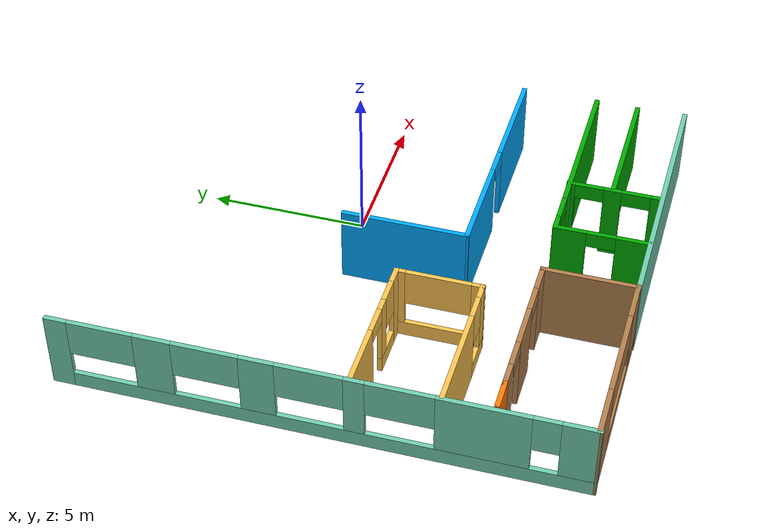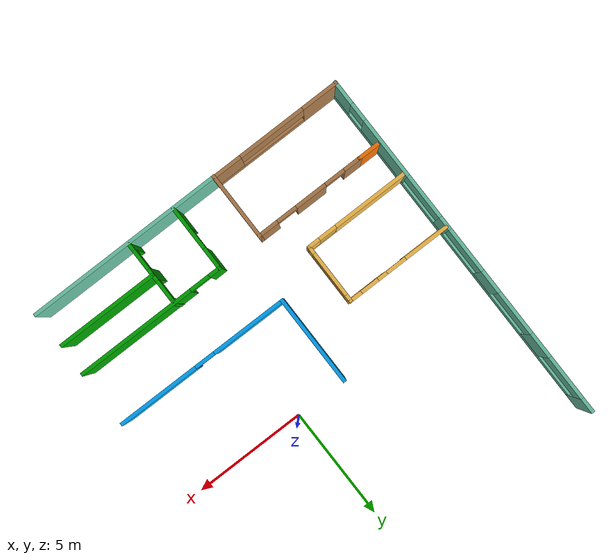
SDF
<sdf version="1.6">
 <model name="Building-1">
  <pose>-1.79482 -0.843369 0 0 -0 0</pose>
  <link name="Wall_101">
   <collision name="Wall_101_Collision">
    <geometry><box><size>1 0.15 2.5</size></box></geometry>
    <pose>0 0 1.25 0 -0 0</pose>
   </collision>
   <visual name="Wall_101_Visual">
    <pose>0 0 1.25 0 -0 0</pose>
    <geometry><box><size>1 0.15 2.5</size></box></geometry>
    <material>
     <script><uri>file://media/materials/scripts/gazebo.material</uri><name>Gazebo/Grey</name></script>
     <ambient>0.996078 0.47451 0.0196078 1</ambient>
    </material>
    <meta><layer>0</layer></meta>
   </visual>
   <pose>-6.64557 -5.66391 0 0 -0 0</pose>
  </link>
  <link name="Wall_55">
   <pose>-3.79556 -5.66391 0 0 -0 0</pose>
   <visual name="Wall_55_Visual_0">
    <pose>-2.08336 0 1.25 0 -0 0</pose>
    <geometry><box><size>0.833273 0.15 2.5</size></box></geometry>
    <material>
     <script><uri>file://media/materials/scripts/gazebo.material</uri><name>Gazebo/Wood</name></script>
     <ambient>0.996078 0.47451 0.0196078 1</ambient>
    </material>
    <meta><layer>0</layer></meta>
   </visual>
   <collision name="Wall_55_Collision_0">
    <geometry><box><size>0.833273 0.15 2.5</size></box></geometry>
    <pose>-2.08336 0 1.25 0 -0 0</pose>
   </collision>
   <visual name="Wall_55_Visual_1">
    <pose>-0.059292 0 1.25 0 -0 0</pose>
    <geometry><box><size>1.41487 0.15 2.5</size></box></geometry>
    <material>
     <script><uri>file://media/materials/scripts/gazebo.material</uri><name>Gazebo/Wood</name></script>
     <ambient>0.996078 0.47451 0.0196078 1</ambient>
    </material>
    <meta><layer>0</layer></meta>
   </visual>
   <collision name="Wall_55_Collision_1">
    <geometry><box><size>1.41487 0.15 2.5</size></box></geometry>
    <pose>-0.059292 0 1.25 0 -0 0</pose>
   </collision>
   <visual name="Wall_55_Visual_2">
    <pose>2.02407 0 1.25 0 -0 0</pose>
    <geometry><box><size>0.951857 0.15 2.5</size></box></geometry>
    <material>
     <script><uri>file://media/materials/scripts/gazebo.material</uri><name>Gazebo/Wood</name></script>
     <ambient>0.996078 0.47451 0.0196078 1</ambient>
    </material>
    <meta><layer>0</layer></meta>
   </visual>
   <collision name="Wall_55_Collision_2">
    <geometry><box><size>0.951857 0.15 2.5</size></box></geometry>
    <pose>2.02407 0 1.25 0 -0 0</pose>
   </collision>
   <visual name="Wall_55_Visual_3">
    <pose>-1.21673 0 2.25 0 -0 0</pose>
    <geometry><box><size>0.9 0.15 0.5</size></box></geometry>
    <material>
     <script><uri>file://media/materials/scripts/gazebo.material</uri><name>Gazebo/Wood</name></script>
     <ambient>0.996078 0.47451 0.0196078 1</ambient>
    </material>
    <meta><layer>0</layer></meta>
   </visual>
   <collision name="Wall_55_Collision_3">
    <geometry><box><size>0.9 0.15 0.5</size></box></geometry>
    <pose>-1.21673 0 2.25 0 -0 0</pose>
   </collision>
   <visual name="Wall_55_Visual_4">
    <pose>1.09814 0 2.25 0 -0 0</pose>
    <geometry><box><size>0.9 0.15 0.5</size></box></geometry>
    <material>
     <script><uri>file://media/materials/scripts/gazebo.material</uri><name>Gazebo/Wood</name></script>
     <ambient>0.996078 0.47451 0.0196078 1</ambient>
    </material>
    <meta><layer>0</layer></meta>
   </visual>
   <collision name="Wall_55_Collision_4">
    <geometry><box><size>0.9 0.15 0.5</size></box></geometry>
    <pose>1.09814 0 2.25 0 -0 0</pose>
   </collision>
  </link>
  <link name="Wall_56">
   <collision name="Wall_56_Collision">
    <geometry><box><size>3 0.15 2.5</size></box></geometry>
    <pose>0 0 1.25 0 -0 0</pose>
   </collision>
   <visual name="Wall_56_Visual">
    <pose>0 0 1.25 0 -0 0</pose>
    <geometry><box><size>3 0.15 2.5</size></box></geometry>
    <material>
     <script><uri>file://media/materials/scripts/gazebo.material</uri><name>Gazebo/Wood</name></script>
     <ambient>0.996078 0.47451 0.0196078 1</ambient>
    </material>
    <meta><layer>0</layer></meta>
   </visual>
   <pose>-1.37057 -7.08891 0 0 0 -1.5708</pose>
  </link>
  <link name="Wall_57">
   <collision name="Wall_57_Collision">
    <geometry><box><size>8.75 0.15 2.5</size></box></geometry>
    <pose>0 0 1.25 0 -0 0</pose>
   </collision>
   <visual name="Wall_57_Visual">
    <pose>0 0 1.25 0 -0 0</pose>
    <geometry><box><size>8.75 0.15 2.5</size></box></geometry>
    <material>
     <script><uri>file://media/materials/scripts/gazebo.material</uri><name>Gazebo/Grey</name></script>
     <ambient>0.435294 0.796078 0.67451 1</ambient>
    </material>
    <meta><layer>0</layer></meta>
   </visual>
   <pose>2.92943 -8.51391 0 0 -0 0</pose>
  </link>
  <link name="Wall_66">
   <pose>-7.28687 -0.542232 0 0 0 -1.56606</pose>
   <visual name="Wall_66_Visual_0">
    <pose>-7.70025 0 1.25 0 -0 0</pose>
    <geometry><box><size>0.692866 0.15 2.5</size></box></geometry>
    <material>
     <script><uri>file://media/materials/scripts/gazebo.material</uri><name>Gazebo/Grey</name></script>
     <ambient>0.435294 0.796078 0.67451 1</ambient>
    </material>
    <meta><layer>0</layer></meta>
   </visual>
   <collision name="Wall_66_Collision_0">
    <geometry><box><size>0.692866 0.15 2.5</size></box></geometry>
    <pose>-7.70025 0 1.25 0 -0 0</pose>
   </collision>
   <visual name="Wall_66_Visual_1">
    <pose>0.346433 0 0.25 0 -0 0</pose>
    <geometry><box><size>15.4005 0.15 0.5</size></box></geometry>
    <material>
     <script><uri>file://media/materials/scripts/gazebo.material</uri><name>Gazebo/Grey</name></script>
     <ambient>0.435294 0.796078 0.67451 1</ambient>
    </material>
    <meta><layer>0</layer></meta>
   </visual>
   <collision name="Wall_66_Collision_1">
    <geometry><box><size>15.4005 0.15 0.5</size></box></geometry>
    <pose>0.346433 0 0.25 0 -0 0</pose>
   </collision>
   <visual name="Wall_66_Visual_2">
    <pose>-4.78225 0 1.5 0 -0 0</pose>
    <geometry><box><size>1.14314 0.15 2</size></box></geometry>
    <material>
     <script><uri>file://media/materials/scripts/gazebo.material</uri><name>Gazebo/Grey</name></script>
     <ambient>0.435294 0.796078 0.67451 1</ambient>
    </material>
    <meta><layer>0</layer></meta>
   </visual>
   <collision name="Wall_66_Collision_2">
    <geometry><box><size>1.14314 0.15 2</size></box></geometry>
    <pose>-4.78225 0 1.5 0 -0 0</pose>
   </collision>
   <visual name="Wall_66_Visual_3">
    <pose>-1.6864 0 1.5 0 -0 0</pose>
    <geometry><box><size>1.04855 0.15 2</size></box></geometry>
    <material>
     <script><uri>file://media/materials/scripts/gazebo.material</uri><name>Gazebo/Grey</name></script>
     <ambient>0.435294 0.796078 0.67451 1</ambient>
    </material>
    <meta><layer>0</layer></meta>
   </visual>
   <collision name="Wall_66_Collision_3">
    <geometry><box><size>1.04855 0.15 2</size></box></geometry>
    <pose>-1.6864 0 1.5 0 -0 0</pose>
   </collision>
   <visual name="Wall_66_Visual_4">
    <pose>1.14316 0 1.5 0 -0 0</pose>
    <geometry><box><size>0.610584 0.15 2</size></box></geometry>
    <material>
     <script><uri>file://media/materials/scripts/gazebo.material</uri><name>Gazebo/Grey</name></script>
     <ambient>0.435294 0.796078 0.67451 1</ambient>
    </material>
    <meta><layer>0</layer></meta>
   </visual>
   <collision name="Wall_66_Collision_4">
    <geometry><box><size>0.610584 0.15 2</size></box></geometry>
    <pose>1.14316 0 1.5 0 -0 0</pose>
   </collision>
   <visual name="Wall_66_Visual_5">
    <pose>4.7972 0 1.5 0 -0 0</pose>
    <geometry><box><size>2.6975 0.15 2</size></box></geometry>
    <material>
     <script><uri>file://media/materials/scripts/gazebo.material</uri><name>Gazebo/Grey</name></script>
     <ambient>0.435294 0.796078 0.67451 1</ambient>
    </material>
    <meta><layer>0</layer></meta>
   </visual>
   <collision name="Wall_66_Collision_5">
    <geometry><box><size>2.6975 0.15 2</size></box></geometry>
    <pose>4.7972 0 1.5 0 -0 0</pose>
   </collision>
   <visual name="Wall_66_Visual_6">
    <pose>7.49632 0 1.5 0 -0 0</pose>
    <geometry><box><size>1.10073 0.15 2</size></box></geometry>
    <material>
     <script><uri>file://media/materials/scripts/gazebo.material</uri><name>Gazebo/Grey</name></script>
     <ambient>0.435294 0.796078 0.67451 1</ambient>
    </material>
    <meta><layer>0</layer></meta>
   </visual>
   <collision name="Wall_66_Collision_6">
    <geometry><box><size>1.10073 0.15 2</size></box></geometry>
    <pose>7.49632 0 1.5 0 -0 0</pose>
   </collision>
   <visual name="Wall_66_Visual_7">
    <pose>-6.35382 0 1.9 0 -0 0</pose>
    <geometry><box><size>2 0.15 1.2</size></box></geometry>
    <material>
     <script><uri>file://media/materials/scripts/gazebo.material</uri><name>Gazebo/Grey</name></script>
     <ambient>0.435294 0.796078 0.67451 1</ambient>
    </material>
    <meta><layer>0</layer></meta>
   </visual>
   <collision name="Wall_66_Collision_7">
    <geometry><box><size>2 0.15 1.2</size></box></geometry>
    <pose>-6.35382 0 1.9 0 -0 0</pose>
   </collision>
   <visual name="Wall_66_Visual_8">
    <pose>-3.21068 0 1.9 0 -0 0</pose>
    <geometry><box><size>2 0.15 1.2</size></box></geometry>
    <material>
     <script><uri>file://media/materials/scripts/gazebo.material</uri><name>Gazebo/Grey</name></script>
     <ambient>0.435294 0.796078 0.67451 1</ambient>
    </material>
    <meta><layer>0</layer></meta>
   </visual>
   <collision name="Wall_66_Collision_8">
    <geometry><box><size>2 0.15 1.2</size></box></geometry>
    <pose>-3.21068 0 1.9 0 -0 0</pose>
   </collision>
   <visual name="Wall_66_Visual_9">
    <pose>-0.162128 0 1.9 0 -0 0</pose>
    <geometry><box><size>2 0.15 1.2</size></box></geometry>
    <material>
     <script><uri>file://media/materials/scripts/gazebo.material</uri><name>Gazebo/Grey</name></script>
     <ambient>0.435294 0.796078 0.67451 1</ambient>
    </material>
    <meta><layer>0</layer></meta>
   </visual>
   <collision name="Wall_66_Collision_9">
    <geometry><box><size>2 0.15 1.2</size></box></geometry>
    <pose>-0.162128 0 1.9 0 -0 0</pose>
   </collision>
   <visual name="Wall_66_Visual_10">
    <pose>2.44846 0 1.9 0 -0 0</pose>
    <geometry><box><size>2 0.15 1.2</size></box></geometry>
    <material>
     <script><uri>file://media/materials/scripts/gazebo.material</uri><name>Gazebo/Grey</name></script>
     <ambient>0.435294 0.796078 0.67451 1</ambient>
    </material>
    <meta><layer>0</layer></meta>
   </visual>
   <collision name="Wall_66_Collision_10">
    <geometry><box><size>2 0.15 1.2</size></box></geometry>
    <pose>2.44846 0 1.9 0 -0 0</pose>
   </collision>
   <visual name="Wall_66_Visual_11">
    <pose>6.54595 0 1.9 0 -0 0</pose>
    <geometry><box><size>0.8 0.15 1.2</size></box></geometry>
    <material>
     <script><uri>file://media/materials/scripts/gazebo.material</uri><name>Gazebo/Grey</name></script>
     <ambient>0.435294 0.796078 0.67451 1</ambient>
    </material>
    <meta><layer>0</layer></meta>
   </visual>
   <collision name="Wall_66_Collision_11">
    <geometry><box><size>0.8 0.15 1.2</size></box></geometry>
    <pose>6.54595 0 1.9 0 -0 0</pose>
   </collision>
  </link>
  <link name="Wall_67">
   <pose>-4.30246 -8.49175 0 0 -0 0</pose>
   <visual name="Wall_67_Visual_0">
    <pose>-2.17925 0 1.25 0 -0 0</pose>
    <geometry><box><size>1.68488 0.15 2.5</size></box></geometry>
    <material>
     <script><uri>file://media/materials/scripts/gazebo.material</uri><name>Gazebo/Wood</name></script>
     <ambient>0.435294 0.796078 0.67451 1</ambient>
    </material>
    <meta><layer>0</layer></meta>
   </visual>
   <collision name="Wall_67_Collision_0">
    <geometry><box><size>1.68488 0.15 2.5</size></box></geometry>
    <pose>-2.17925 0 1.25 0 -0 0</pose>
   </collision>
   <visual name="Wall_67_Visual_1">
    <pose>0.842439 0 0.25 0 -0 0</pose>
    <geometry><box><size>4.3585 0.15 0.5</size></box></geometry>
    <material>
     <script><uri>file://media/materials/scripts/gazebo.material</uri><name>Gazebo/Wood</name></script>
     <ambient>0.435294 0.796078 0.67451 1</ambient>
    </material>
    <meta><layer>0</layer></meta>
   </visual>
   <collision name="Wall_67_Collision_1">
    <geometry><box><size>4.3585 0.15 0.5</size></box></geometry>
    <pose>0.842439 0 0.25 0 -0 0</pose>
   </collision>
   <visual name="Wall_67_Visual_2">
    <pose>2.34244 0 1.5 0 -0 0</pose>
    <geometry><box><size>1.3585 0.15 2</size></box></geometry>
    <material>
     <script><uri>file://media/materials/scripts/gazebo.material</uri><name>Gazebo/Wood</name></script>
     <ambient>0.435294 0.796078 0.67451 1</ambient>
    </material>
    <meta><layer>0</layer></meta>
   </visual>
   <collision name="Wall_67_Collision_2">
    <geometry><box><size>1.3585 0.15 2</size></box></geometry>
    <pose>2.34244 0 1.5 0 -0 0</pose>
   </collision>
   <visual name="Wall_67_Visual_3">
    <pose>0.163188 0 1.9 0 -0 0</pose>
    <geometry><box><size>3 0.15 1.2</size></box></geometry>
    <material>
     <script><uri>file://media/materials/scripts/gazebo.material</uri><name>Gazebo/Wood</name></script>
     <ambient>0.435294 0.796078 0.67451 1</ambient>
    </material>
    <meta><layer>0</layer></meta>
   </visual>
   <collision name="Wall_67_Collision_3">
    <geometry><box><size>3 0.15 1.2</size></box></geometry>
    <pose>0.163188 0 1.9 0 -0 0</pose>
   </collision>
  </link>
  <link name="Wall_71">
   <pose>-4.91996 -4.15514 0 0 0 -6.7e-05</pose>
   <visual name="Wall_71_Visual_0">
    <pose>-0.681713 0 1.25 0 -0 0</pose>
    <geometry><box><size>3.41204 0.15 2.5</size></box></geometry>
    <material>
     <script><uri>file://media/materials/scripts/gazebo.material</uri><name>Gazebo/Grey</name></script>
     <ambient>1 0.764706 0.305882 1</ambient>
    </material>
    <meta><layer>0</layer></meta>
   </visual>
   <collision name="Wall_71_Collision_0">
    <geometry><box><size>3.41204 0.15 2.5</size></box></geometry>
    <pose>-0.681713 0 1.25 0 -0 0</pose>
   </collision>
   <visual name="Wall_71_Visual_1">
    <pose>1.70602 0 0.25 0 -0 0</pose>
    <geometry><box><size>1.36343 0.15 0.5</size></box></geometry>
    <material>
     <script><uri>file://media/materials/scripts/gazebo.material</uri><name>Gazebo/Grey</name></script>
     <ambient>1 0.764706 0.305882 1</ambient>
    </material>
    <meta><layer>0</layer></meta>
   </visual>
   <collision name="Wall_71_Collision_1">
    <geometry><box><size>1.36343 0.15 0.5</size></box></geometry>
    <pose>1.70602 0 0.25 0 -0 0</pose>
   </collision>
   <visual name="Wall_71_Visual_2">
    <pose>2.10602 0 1.5 0 -0 0</pose>
    <geometry><box><size>0.563425 0.15 2</size></box></geometry>
    <material>
     <script><uri>file://media/materials/scripts/gazebo.material</uri><name>Gazebo/Grey</name></script>
     <ambient>1 0.764706 0.305882 1</ambient>
    </material>
    <meta><layer>0</layer></meta>
   </visual>
   <collision name="Wall_71_Collision_2">
    <geometry><box><size>0.563425 0.15 2</size></box></geometry>
    <pose>2.10602 0 1.5 0 -0 0</pose>
   </collision>
   <visual name="Wall_71_Visual_3">
    <pose>1.42431 0 1.9 0 -0 0</pose>
    <geometry><box><size>0.8 0.15 1.2</size></box></geometry>
    <material>
     <script><uri>file://media/materials/scripts/gazebo.material</uri><name>Gazebo/Grey</name></script>
     <ambient>1 0.764706 0.305882 1</ambient>
    </material>
    <meta><layer>0</layer></meta>
   </visual>
   <collision name="Wall_71_Collision_3">
    <geometry><box><size>0.8 0.15 1.2</size></box></geometry>
    <pose>1.42431 0 1.9 0 -0 0</pose>
   </collision>
  </link>
  <link name="Wall_72">
   <pose>-2.60723 -2.8553 0 0 -0 1.5708</pose>
   <visual name="Wall_72_Visual_0">
    <pose>-1.17814 0 1.25 0 -0 0</pose>
    <geometry><box><size>0.393718 0.15 2.5</size></box></geometry>
    <material>
     <script><uri>file://media/materials/scripts/gazebo.material</uri><name>Gazebo/Grey</name></script>
     <ambient>1 0.764706 0.305882 1</ambient>
    </material>
    <meta><layer>0</layer></meta>
   </visual>
   <collision name="Wall_72_Collision_0">
    <geometry><box><size>0.393718 0.15 2.5</size></box></geometry>
    <pose>-1.17814 0 1.25 0 -0 0</pose>
   </collision>
   <visual name="Wall_72_Visual_1">
    <pose>0.196859 0 0.25 0 -0 0</pose>
    <geometry><box><size>2.35628 0.15 0.5</size></box></geometry>
    <material>
     <script><uri>file://media/materials/scripts/gazebo.material</uri><name>Gazebo/Grey</name></script>
     <ambient>1 0.764706 0.305882 1</ambient>
    </material>
    <meta><layer>0</layer></meta>
   </visual>
   <collision name="Wall_72_Collision_1">
    <geometry><box><size>2.35628 0.15 0.5</size></box></geometry>
    <pose>0.196859 0 0.25 0 -0 0</pose>
   </collision>
   <visual name="Wall_72_Visual_2">
    <pose>1.19686 0 1.5 0 -0 0</pose>
    <geometry><box><size>0.356282 0.15 2</size></box></geometry>
    <material>
     <script><uri>file://media/materials/scripts/gazebo.material</uri><name>Gazebo/Grey</name></script>
     <ambient>1 0.764706 0.305882 1</ambient>
    </material>
    <meta><layer>0</layer></meta>
   </visual>
   <collision name="Wall_72_Collision_2">
    <geometry><box><size>0.356282 0.15 2</size></box></geometry>
    <pose>1.19686 0 1.5 0 -0 0</pose>
   </collision>
   <visual name="Wall_72_Visual_3">
    <pose>0.018718 0 1.9 0 -0 0</pose>
    <geometry><box><size>2 0.15 1.2</size></box></geometry>
    <material>
     <script><uri>file://media/materials/scripts/gazebo.material</uri><name>Gazebo/Grey</name></script>
     <ambient>1 0.764706 0.305882 1</ambient>
    </material>
    <meta><layer>0</layer></meta>
   </visual>
   <collision name="Wall_72_Collision_3">
    <geometry><box><size>2 0.15 1.2</size></box></geometry>
    <pose>0.018718 0 1.9 0 -0 0</pose>
   </collision>
  </link>
  <link name="Wall_73">
   <pose>-4.90723 -1.5553 0 0 -0 3.14159</pose>
   <visual name="Wall_73_Visual_0">
    <pose>-2.07496 0 1.25 0 -0 0</pose>
    <geometry><box><size>0.600078 0.15 2.5</size></box></geometry>
    <material>
     <script><uri>file://media/materials/scripts/gazebo.material</uri><name>Gazebo/Grey</name></script>
     <ambient>1 0.764706 0.305882 1</ambient>
    </material>
    <meta><layer>0</layer></meta>
   </visual>
   <collision name="Wall_73_Collision_0">
    <geometry><box><size>0.600078 0.15 2.5</size></box></geometry>
    <pose>-2.07496 0 1.25 0 -0 0</pose>
   </collision>
   <visual name="Wall_73_Visual_1">
    <pose>1.36329 0 1.25 0 -0 0</pose>
    <geometry><box><size>2.02342 0.15 2.5</size></box></geometry>
    <material>
     <script><uri>file://media/materials/scripts/gazebo.material</uri><name>Gazebo/Grey</name></script>
     <ambient>1 0.764706 0.305882 1</ambient>
    </material>
    <meta><layer>0</layer></meta>
   </visual>
   <collision name="Wall_73_Collision_1">
    <geometry><box><size>2.02342 0.15 2.5</size></box></geometry>
    <pose>1.36329 0 1.25 0 -0 0</pose>
   </collision>
   <visual name="Wall_73_Visual_2">
    <pose>-1.16167 0 0.25 0 -0 0</pose>
    <geometry><box><size>1.2265 0.15 0.5</size></box></geometry>
    <material>
     <script><uri>file://media/materials/scripts/gazebo.material</uri><name>Gazebo/Grey</name></script>
     <ambient>1 0.764706 0.305882 1</ambient>
    </material>
    <meta><layer>0</layer></meta>
   </visual>
   <collision name="Wall_73_Collision_2">
    <geometry><box><size>1.2265 0.15 0.5</size></box></geometry>
    <pose>-1.16167 0 0.25 0 -0 0</pose>
   </collision>
   <visual name="Wall_73_Visual_3">
    <pose>-0.761671 0 1.5 0 -0 0</pose>
    <geometry><box><size>0.426503 0.15 2</size></box></geometry>
    <material>
     <script><uri>file://media/materials/scripts/gazebo.material</uri><name>Gazebo/Grey</name></script>
     <ambient>1 0.764706 0.305882 1</ambient>
    </material>
    <meta><layer>0</layer></meta>
   </visual>
   <collision name="Wall_73_Collision_3">
    <geometry><box><size>0.426503 0.15 2</size></box></geometry>
    <pose>-0.761671 0 1.5 0 -0 0</pose>
   </collision>
   <visual name="Wall_73_Visual_4">
    <pose>-1.37492 0 1.9 0 -0 0</pose>
    <geometry><box><size>0.8 0.15 1.2</size></box></geometry>
    <material>
     <script><uri>file://media/materials/scripts/gazebo.material</uri><name>Gazebo/Grey</name></script>
     <ambient>1 0.764706 0.305882 1</ambient>
    </material>
    <meta><layer>0</layer></meta>
   </visual>
   <collision name="Wall_73_Collision_4">
    <geometry><box><size>0.8 0.15 1.2</size></box></geometry>
    <pose>-1.37492 0 1.9 0 -0 0</pose>
   </collision>
   <visual name="Wall_73_Visual_5">
    <pose>-0.098419 0 2.25 0 -0 0</pose>
    <geometry><box><size>0.9 0.15 0.5</size></box></geometry>
    <material>
     <script><uri>file://media/materials/scripts/gazebo.material</uri><name>Gazebo/Grey</name></script>
     <ambient>1 0.764706 0.305882 1</ambient>
    </material>
    <meta><layer>0</layer></meta>
   </visual>
   <collision name="Wall_73_Collision_5">
    <geometry><box><size>0.9 0.15 0.5</size></box></geometry>
    <pose>-0.098419 0 2.25 0 -0 0</pose>
   </collision>
  </link>
  <link name="Wall_90">
   <collision name="Wall_90_Collision">
    <geometry><box><size>4 0.15 2.5</size></box></geometry>
    <pose>0 0 1.25 0 -0 0</pose>
   </collision>
   <visual name="Wall_90_Visual">
    <pose>0 0 1.25 0 -0 0</pose>
    <geometry><box><size>4 0.15 2.5</size></box></geometry>
    <material>
     <script><uri>file://media/materials/scripts/gazebo.material</uri><name>Gazebo/Grey</name></script>
     <ambient>0 0.666667 1 1</ambient>
    </material>
    <meta><layer>0</layer></meta>
   </visual>
   <pose>-0.536163 -1.23779 0 0 0 -1.5708</pose>
  </link>
  <link name="Wall_91">
   <pose>3.31292 -3.17363 0 0 0 -0.002817</pose>
   <visual name="Wall_91_Visual_0">
    <pose>-2.24472 0 1.25 0 -0 0</pose>
    <geometry><box><size>3.35877 0.15 2.5</size></box></geometry>
    <material>
     <script><uri>file://media/materials/scripts/gazebo.material</uri><name>Gazebo/Grey</name></script>
     <ambient>0 0.666667 1 1</ambient>
    </material>
    <meta><layer>0</layer></meta>
   </visual>
   <collision name="Wall_91_Collision_0">
    <geometry><box><size>3.35877 0.15 2.5</size></box></geometry>
    <pose>-2.24472 0 1.25 0 -0 0</pose>
   </collision>
   <visual name="Wall_91_Visual_1">
    <pose>2.12938 0 1.25 0 -0 0</pose>
    <geometry><box><size>3.58944 0.15 2.5</size></box></geometry>
    <material>
     <script><uri>file://media/materials/scripts/gazebo.material</uri><name>Gazebo/Grey</name></script>
     <ambient>0 0.666667 1 1</ambient>
    </material>
    <meta><layer>0</layer></meta>
   </visual>
   <collision name="Wall_91_Collision_1">
    <geometry><box><size>3.58944 0.15 2.5</size></box></geometry>
    <pose>2.12938 0 1.25 0 -0 0</pose>
   </collision>
   <visual name="Wall_91_Visual_2">
    <pose>-0.115334 0 2.25 0 -0 0</pose>
    <geometry><box><size>0.9 0.15 0.5</size></box></geometry>
    <material>
     <script><uri>file://media/materials/scripts/gazebo.material</uri><name>Gazebo/Grey</name></script>
     <ambient>0 0.666667 1 1</ambient>
    </material>
    <meta><layer>0</layer></meta>
   </visual>
   <collision name="Wall_91_Collision_2">
    <geometry><box><size>0.9 0.15 0.5</size></box></geometry>
    <pose>-0.115334 0 2.25 0 -0 0</pose>
   </collision>
  </link>
  <link name="Wall_93">
   <pose>3.89939 -5.62209 0 0 -0 3.14159</pose>
   <visual name="Wall_93_Visual_0">
    <pose>-0.736455 0 1.25 0 -0 0</pose>
    <geometry><box><size>5.27709 0.15 2.5</size></box></geometry>
    <material>
     <script><uri>file://media/materials/scripts/gazebo.material</uri><name>Gazebo/Grey</name></script>
     <ambient>0 0.666667 0 1</ambient>
    </material>
    <meta><layer>0</layer></meta>
   </visual>
   <collision name="Wall_93_Collision_0">
    <geometry><box><size>5.27709 0.15 2.5</size></box></geometry>
    <pose>-0.736455 0 1.25 0 -0 0</pose>
   </collision>
   <visual name="Wall_93_Visual_1">
    <pose>3.08854 0 1.25 0 -0 0</pose>
    <geometry><box><size>0.572909 0.15 2.5</size></box></geometry>
    <material>
     <script><uri>file://media/materials/scripts/gazebo.material</uri><name>Gazebo/Grey</name></script>
     <ambient>0 0.666667 0 1</ambient>
    </material>
    <meta><layer>0</layer></meta>
   </visual>
   <collision name="Wall_93_Collision_1">
    <geometry><box><size>0.572909 0.15 2.5</size></box></geometry>
    <pose>3.08854 0 1.25 0 -0 0</pose>
   </collision>
   <visual name="Wall_93_Visual_2">
    <pose>2.35209 0 2.25 0 -0 0</pose>
    <geometry><box><size>0.9 0.15 0.5</size></box></geometry>
    <material>
     <script><uri>file://media/materials/scripts/gazebo.material</uri><name>Gazebo/Grey</name></script>
     <ambient>0 0.666667 0 1</ambient>
    </material>
    <meta><layer>0</layer></meta>
   </visual>
   <collision name="Wall_93_Collision_2">
    <geometry><box><size>0.9 0.15 0.5</size></box></geometry>
    <pose>2.35209 0 2.25 0 -0 0</pose>
   </collision>
  </link>
  <link name="Wall_94">
   <pose>0.599385 -7.04709 0 0 0 -1.5708</pose>
   <visual name="Wall_94_Visual_0">
    <pose>-0.985126 0 1.25 0 -0 0</pose>
    <geometry><box><size>1.02975 0.15 2.5</size></box></geometry>
    <material>
     <script><uri>file://media/materials/scripts/gazebo.material</uri><name>Gazebo/Grey</name></script>
     <ambient>0 0.666667 0 1</ambient>
    </material>
    <meta><layer>0</layer></meta>
   </visual>
   <collision name="Wall_94_Collision_0">
    <geometry><box><size>1.02975 0.15 2.5</size></box></geometry>
    <pose>-0.985126 0 1.25 0 -0 0</pose>
   </collision>
   <visual name="Wall_94_Visual_1">
    <pose>0.964874 0 1.25 0 -0 0</pose>
    <geometry><box><size>1.07025 0.15 2.5</size></box></geometry>
    <material>
     <script><uri>file://media/materials/scripts/gazebo.material</uri><name>Gazebo/Grey</name></script>
     <ambient>0 0.666667 0 1</ambient>
    </material>
    <meta><layer>0</layer></meta>
   </visual>
   <collision name="Wall_94_Collision_1">
    <geometry><box><size>1.07025 0.15 2.5</size></box></geometry>
    <pose>0.964874 0 1.25 0 -0 0</pose>
   </collision>
   <visual name="Wall_94_Visual_2">
    <pose>-0.020251 0 2.25 0 -0 0</pose>
    <geometry><box><size>0.9 0.15 0.5</size></box></geometry>
    <material>
     <script><uri>file://media/materials/scripts/gazebo.material</uri><name>Gazebo/Grey</name></script>
     <ambient>0 0.666667 0 1</ambient>
    </material>
    <meta><layer>0</layer></meta>
   </visual>
   <collision name="Wall_94_Collision_2">
    <geometry><box><size>0.9 0.15 0.5</size></box></geometry>
    <pose>-0.020251 0 2.25 0 -0 0</pose>
   </collision>
  </link>
  <link name="Wall_97">
   <pose>2.77957 -7.0275 0 0 0 -1.5708</pose>
   <visual name="Wall_97_Visual_0">
    <pose>-1.36324 0 1.25 0 -0 0</pose>
    <geometry><box><size>0.273518 0.15 2.5</size></box></geometry>
    <material>
     <script><uri>file://media/materials/scripts/gazebo.material</uri><name>Gazebo/Grey</name></script>
     <ambient>0 0.666667 0 1</ambient>
    </material>
    <meta><layer>0</layer></meta>
   </visual>
   <collision name="Wall_97_Collision_0">
    <geometry><box><size>0.273518 0.15 2.5</size></box></geometry>
    <pose>-1.36324 0 1.25 0 -0 0</pose>
   </collision>
   <visual name="Wall_97_Visual_1">
    <pose>-0.051396 0 1.25 0 -0 0</pose>
    <geometry><box><size>0.550171 0.15 2.5</size></box></geometry>
    <material>
     <script><uri>file://media/materials/scripts/gazebo.material</uri><name>Gazebo/Grey</name></script>
     <ambient>0 0.666667 0 1</ambient>
    </material>
    <meta><layer>0</layer></meta>
   </visual>
   <collision name="Wall_97_Collision_1">
    <geometry><box><size>0.550171 0.15 2.5</size></box></geometry>
    <pose>-0.051396 0 1.25 0 -0 0</pose>
   </collision>
   <visual name="Wall_97_Visual_2">
    <pose>1.31184 0 1.25 0 -0 0</pose>
    <geometry><box><size>0.376311 0.15 2.5</size></box></geometry>
    <material>
     <script><uri>file://media/materials/scripts/gazebo.material</uri><name>Gazebo/Grey</name></script>
     <ambient>0 0.666667 0 1</ambient>
    </material>
    <meta><layer>0</layer></meta>
   </visual>
   <collision name="Wall_97_Collision_2">
    <geometry><box><size>0.376311 0.15 2.5</size></box></geometry>
    <pose>1.31184 0 1.25 0 -0 0</pose>
   </collision>
   <visual name="Wall_97_Visual_3">
    <pose>-0.776482 0 2.25 0 -0 0</pose>
    <geometry><box><size>0.9 0.15 0.5</size></box></geometry>
    <material>
     <script><uri>file://media/materials/scripts/gazebo.material</uri><name>Gazebo/Grey</name></script>
     <ambient>0 0.666667 0 1</ambient>
    </material>
    <meta><layer>0</layer></meta>
   </visual>
   <collision name="Wall_97_Collision_3">
    <geometry><box><size>0.9 0.15 0.5</size></box></geometry>
    <pose>-0.776482 0 2.25 0 -0 0</pose>
   </collision>
   <visual name="Wall_97_Visual_4">
    <pose>0.673689 0 2.25 0 -0 0</pose>
    <geometry><box><size>0.9 0.15 0.5</size></box></geometry>
    <material>
     <script><uri>file://media/materials/scripts/gazebo.material</uri><name>Gazebo/Grey</name></script>
     <ambient>0 0.666667 0 1</ambient>
    </material>
    <meta><layer>0</layer></meta>
   </visual>
   <collision name="Wall_97_Collision_4">
    <geometry><box><size>0.9 0.15 0.5</size></box></geometry>
    <pose>0.673689 0 2.25 0 -0 0</pose>
   </collision>
  </link>
  <link name="Wall_99">
   <collision name="Wall_99_Collision">
    <geometry><box><size>4.5 0.15 2.5</size></box></geometry>
    <pose>0 0 1.25 0 -0 0</pose>
   </collision>
   <visual name="Wall_99_Visual">
    <pose>0 0 1.25 0 -0 0</pose>
    <geometry><box><size>4.5 0.15 2.5</size></box></geometry>
    <material>
     <script><uri>file://media/materials/scripts/gazebo.material</uri><name>Gazebo/Grey</name></script>
     <ambient>0 0.666667 0 1</ambient>
    </material>
    <meta><layer>0</layer></meta>
   </visual>
   <pose>4.97952 -6.97437 0 0 -0 0</pose>
  </link>
  <static>1</static>
 </model>
</sdf>
